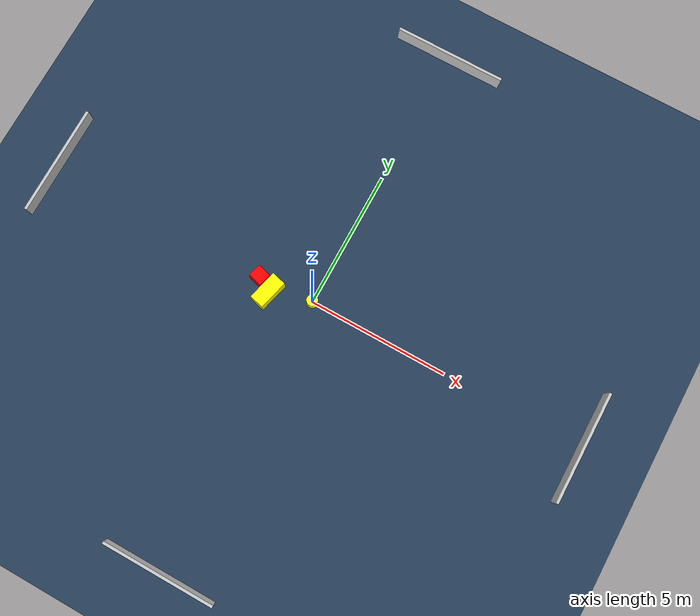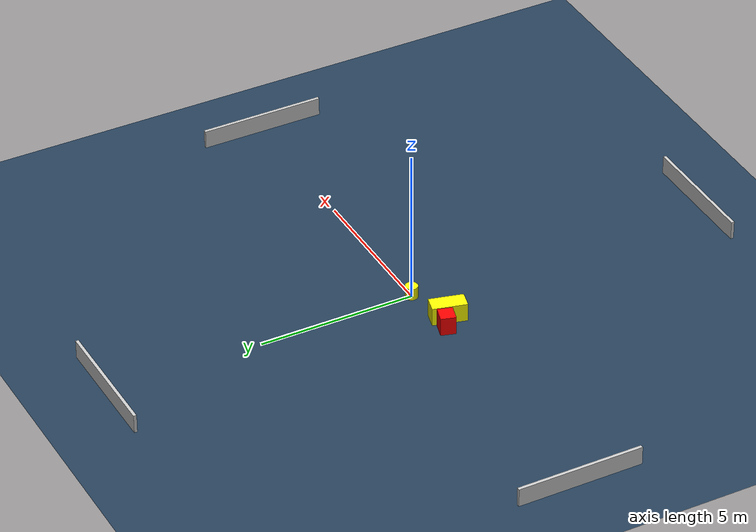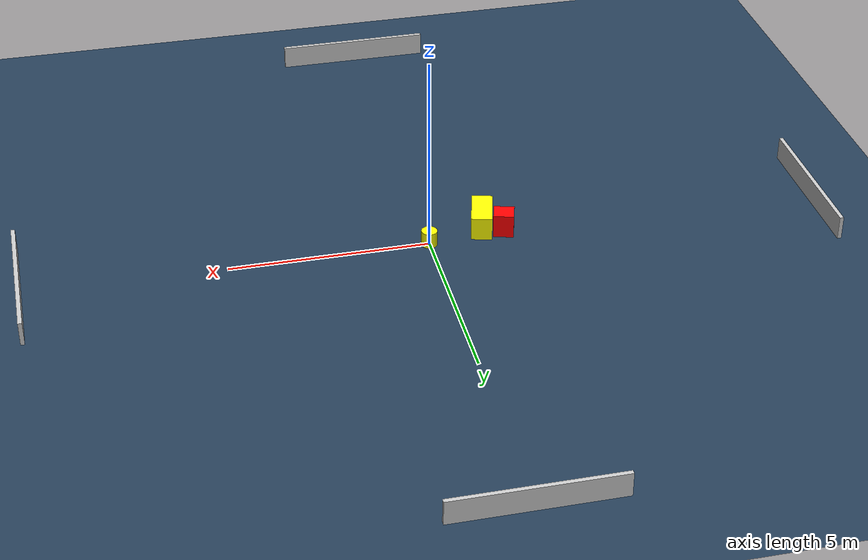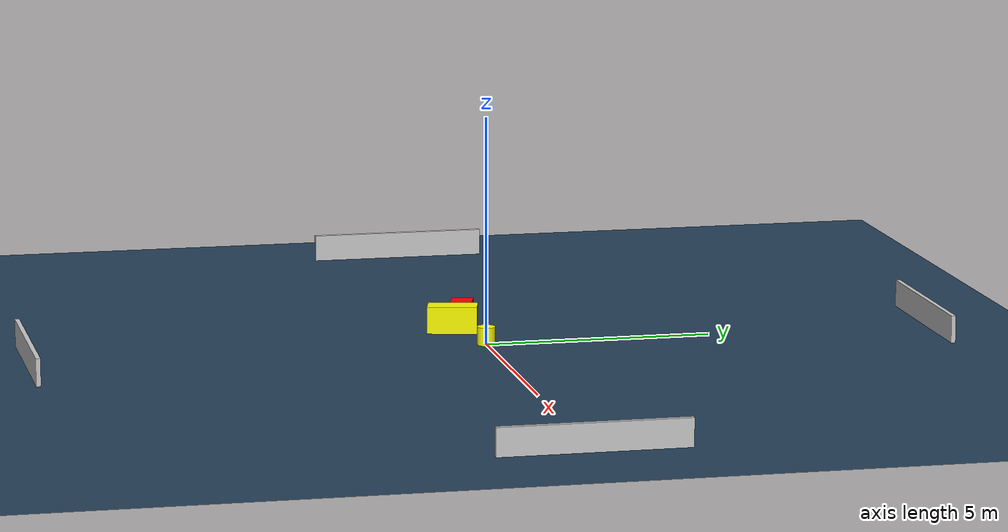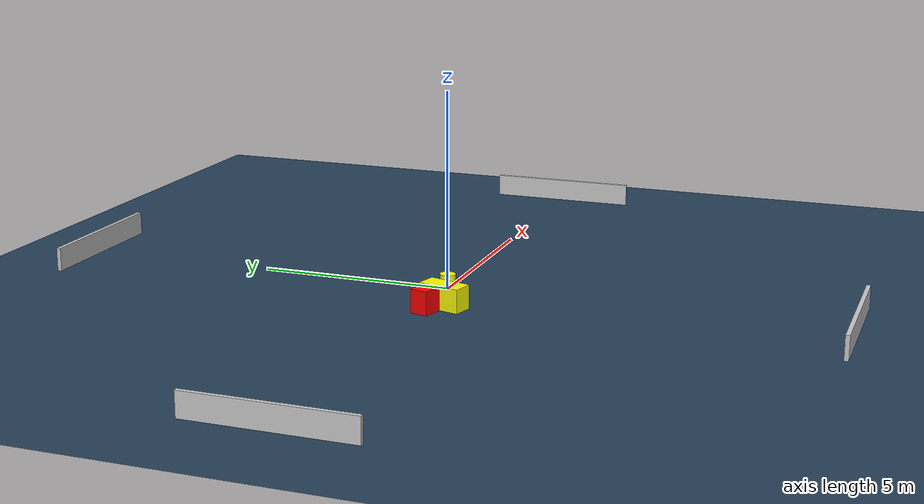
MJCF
<?xml version="1.0" ?>
<mujoco model="generated_environment">
  <option timestep="0.01" integrator="RK4" cone="elliptic"/>
  <default>
    <geom density="1"/>
  </default>
  <asset>
    <texture builtin="gradient" height="3072" name="skybox" rgb1="0.3 0.5 0.7" rgb2="0 0 0" type="skybox" width="512"/>
    <texture builtin="checker" height="300" name="groundplane" rgb1="0.2 0.3 0.4" rgb2="0.1 0.2 0.3" type="2d" width="300"/>
    <material name="groundplane" reflectance="0.2" texrepeat="5 5" texture="groundplane"/>
  </asset>
  <worldbody>
    <light dir="0 0 -1" directional="true" pos="0 0 1.5"/>
    <geom condim="3" friction="0.5 0.005 0.001" material="groundplane" name="floor" pos="0 0 0" size="0 0 0.05" type="plane"/>
    <body name="walls">
      <geom name="wall_1" condim="4" pos="-10.0 0.0 0.3" rgba="0.800000011920929 0.800000011920929 0.800000011920929 1.0" size="0.05 2.0 0.3" type="box"/>
      <geom name="wall_2" condim="4" pos="10.0 0.0 0.3" rgba="0.800000011920929 0.800000011920929 0.800000011920929 1.0" size="0.05 2.0 0.3" type="box"/>
      <geom name="wall_3" condim="4" pos="0.0 -10.0 0.3" rgba="0.800000011920929 0.800000011920929 0.800000011920929 1.0" size="2.0 0.05 0.3" type="box"/>
      <geom name="wall_4" condim="4" pos="0.0 10.0 0.3" rgba="0.800000011920929 0.800000011920929 0.800000011920929 1.0" size="2.0 0.05 0.3" type="box"/>
    </body>
    <body name="robot">
      <joint name="joint_x" type="slide" pos="0 0 0" axis="1 0 0"/>
      <joint name="joint_y" type="slide" pos="0 0 0" axis="0 1 0"/>
      <geom name="robot" type="cylinder" pos="0.0 0.0 0.2" size="0.2 0.2 0.0" mass="5.0" friction="1.0 0.005 0.0001" condim="4" rgba="1.0 1.0 0.0 1.0"/>
    </body>
    <body name="obstacle_1_movable">
      <geom name="obstacle_1_movable" condim="4" pos="-1.4463367251954555 -0.4450393024783351 0.3" euler="0 0 75.44485028272399" friction="0.0 0.005 0.001" rgba="1.0 1.0 0.0 1.0" size="0.5477484408236101 0.26343714147738073 0.3" type="box" mass="0.1"/>
      <joint type="free"/>
    </body>
    <body name="obstacle_2_static">
      <geom name="obstacle_2_static" condim="4" pos="-1.9304942162738137 -0.1346618586944685 0.3" euler="0 0 343.79265232317726" friction="0.0 0.005 0.001" rgba="1.0 0.0 0.0 1.0" size="0.2550376036781616 0.23857934666385525 0.3" type="box"/>
    </body>
  </worldbody>
  <actuator>
    <motor name="actuator_x" joint="joint_x" gear="1" ctrlrange="-1 1"/>
    <motor name="actuator_y" joint="joint_y" gear="1" ctrlrange="-1 1"/>
  </actuator>
</mujoco>
